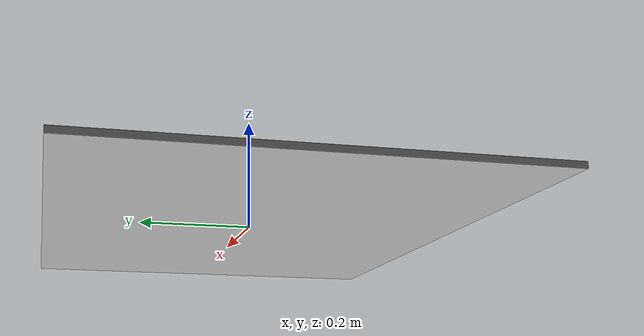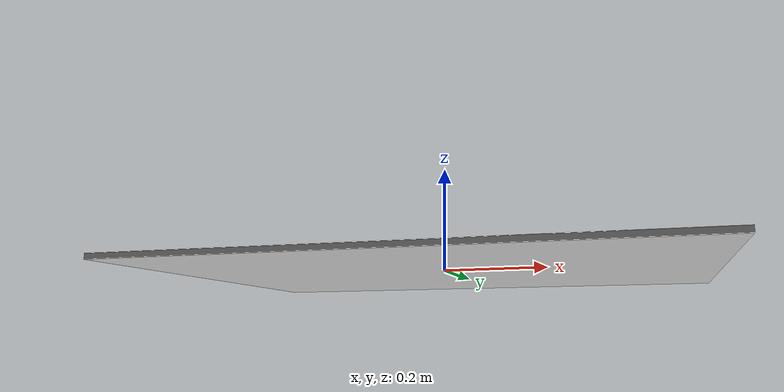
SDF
<?xml version="1.0" ?>
<sdf version="1.8">
  <model name="charuco_calibration_board">
    <static>false</static>
    <link name="link">
      <pose>0 0 0 0 0 0</pose>
      <gravity>false</gravity>
      <inertial>
        <mass>0.1</mass>
        <inertia>
          <ixx>0.004</ixx>
          <iyy>0.008</iyy>
          <izz>0.012</izz>
        </inertia>
      </inertial>

      <!-- Visual (frente do marcador) -->
      <visual name="front_visual">
        <pose>0 0 0.005 0 0 0</pose>
        <geometry>
          <box>
            <size>1.02 0.74 0.001</size>
          </box>
        </geometry>
        <material>
          <ambient>1 1 1 1</ambient>
          <diffuse>1 1 1 1</diffuse>
          <specular>0.1 0.1 0.1 1</specular>
          <pbr>
            <metal>
              <albedo_map>model://CharucoBoard/materials/textures/charuco_board_7x9_4x4_50_with_border.png</albedo_map>
            </metal>
          </pbr>
        </material>
      </visual>

      <!-- Visual (verso - branco) -->
      <visual name="back_visual">
        <pose>0 0 -0.005 0 0 0</pose>
        <geometry>
          <box>
            <size>1.02 0.74 0.001</size>
          </box>
        </geometry>
        <material>
          <ambient>0.9 0.9 0.9 1</ambient>
          <diffuse>0.9 0.9 0.9 1</diffuse>
        </material>
      </visual>

      <!-- Visual (lateral - espessura) -->
      <visual name="edge_visual">
        <pose>0 0 0 0 0 0</pose>
        <geometry>
          <box>
            <size>1.02 0.74 0.01</size>
          </box>
        </geometry>
        <material>
          <ambient>0.3 0.3 0.3 1</ambient>
          <diffuse>0.3 0.3 0.3 1</diffuse>
        </material>
      </visual>

      <!-- Collision -->
      <collision name="collision">
        <pose>0 0 0 0 0 0</pose>
        <geometry>
          <box>
            <size>1.02 0.74 0.01</size>
          </box>
        </geometry>
        <surface>
          <friction>
            <ode>
              <mu>0.6</mu>
              <mu2>0.6</mu2>
            </ode>
          </friction>
        </surface>
      </collision>

    </link>

    <!-- Plugin para permitir movimento via gz service -->
    <plugin
      filename="gz-sim-pose-publisher-system"
      name="gz::sim::systems::PosePublisher">
      <publish_link_pose>true</publish_link_pose>
      <publish_sensor_pose>false</publish_sensor_pose>
      <publish_collision_pose>false</publish_collision_pose>
      <publish_visual_pose>false</publish_visual_pose>
      <publish_nested_model_pose>false</publish_nested_model_pose>
      <use_pose_vector_msg>true</use_pose_vector_msg>
      <static_publisher>false</static_publisher>
      <static_update_frequency>1</static_update_frequency>
    </plugin>

  </model>
</sdf>
